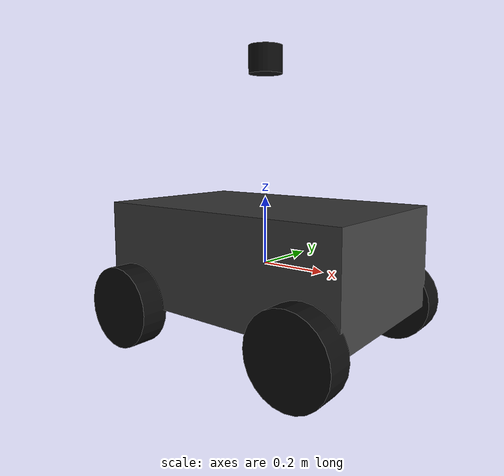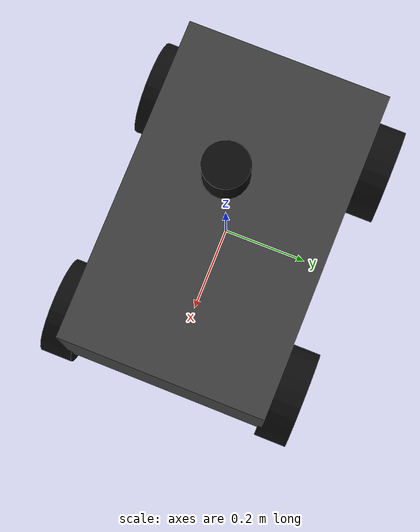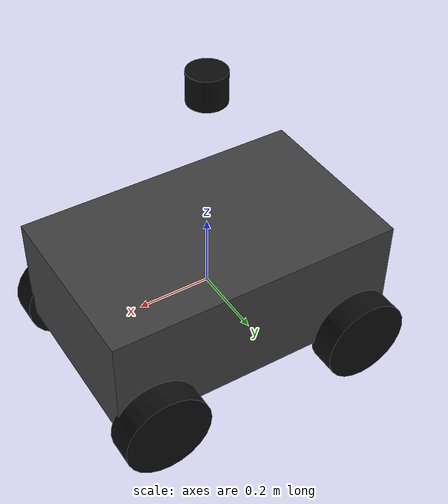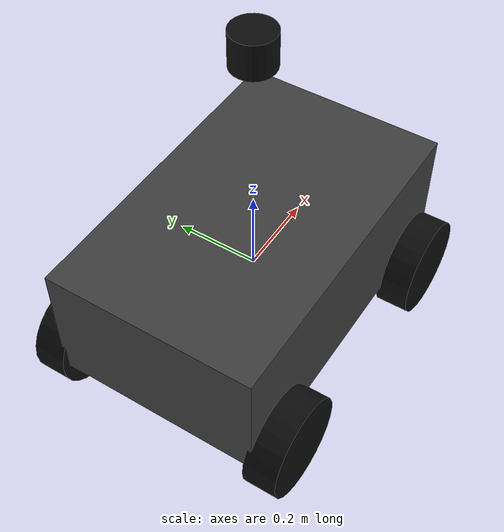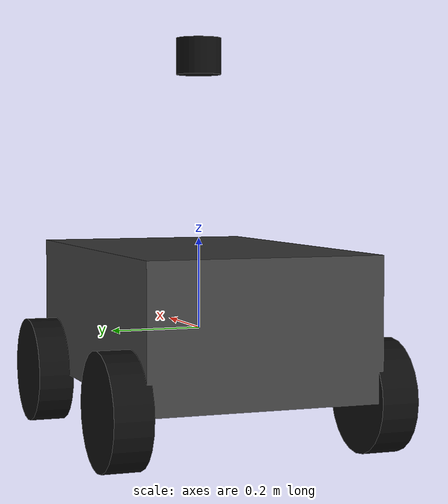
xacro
<?xml version="1.0"?>

<robot name="all_weather_explorer"
       xmlns:xacro="http://ros.org/wiki/xacro">

  <!-- Include all robot components -->
  <xacro:include filename="$(find rover)/urdf/materials.xacro"/>
  <xacro:include filename="$(find rover)/urdf/base.xacro"/>
  <xacro:include filename="$(find rover)/urdf/wheels.xacro"/>
  <xacro:include filename="$(find rover)/urdf/sensors.xacro"/>
  <xacro:include filename="$(find rover)/urdf/gazebo.xacro"/>
  <xacro:include filename="$(find rover)/urdf/ros2_control.xacro"/>

  <!-- Instantiate the robot -->
  <xacro:rover_base/>
  <xacro:rover_wheels/>
  <xacro:rover_sensors/>
  <xacro:rover_gazebo/>
  <xacro:rover_ros2_control/>

</robot>

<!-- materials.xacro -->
<robot xmlns:xacro="http://www.ros.org/wiki/xacro">

  <material name="black">
    <color rgba="0.05 0.05 0.05 1"/>
  </material>

  <material name="dark_grey">
    <color rgba="0.25 0.25 0.25 1"/>
  </material>

  <material name="grey">
    <color rgba="0.6 0.6 0.6 1"/>
  </material>

  <material name="white">
    <color rgba="1.0 1.0 1.0 1"/>
  </material>

  <material name="blue">
    <color rgba="0.1 0.3 0.8 1"/>
  </material>

  <material name="red">
    <color rgba="0.8 0.1 0.1 1"/>
  </material>

</robot>

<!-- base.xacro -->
<robot xmlns:xacro="http://ros.org/wiki/xacro">

  <xacro:macro name="rover_base">

    <link name="base_link">

      <visual>
        <origin xyz="0 0 0.03" rpy="0 0 0"/>
        <geometry>
          <box size="0.8 0.5 0.3"/>
        </geometry>
        <material name="dark_grey"/>
      </visual>

      <collision>
        <origin xyz="0 0 0.03" rpy="0 0 0"/>
        <geometry>
          <box size="0.8 0.5 0.3"/>
        </geometry>
      </collision>

      <inertial>
        <origin xyz="0 0 0"/>
        <mass value="25.0"/>

        <inertia
          ixx="0.90"
          ixy="0.0"
          ixz="0.0"
          iyy="1.90"
          iyz="0.0"
          izz="2.40"/>
      </inertial>

    </link>

    <gazebo reference="base_link">
      <material>Gazebo/DarkGrey</material>

      <self_collide>false</self_collide>
      <gravity>true</gravity>

      <mu1>1.5</mu1>
      <mu2>1.5</mu2>

      <kp>1000000</kp>
      <kd>100</kd>
    </gazebo>

  </xacro:macro>

</robot>

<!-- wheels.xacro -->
<robot xmlns:xacro="http://www.ros.org/wiki/xacro">

  <!-- Wheel dimensions -->

  <xacro:property name="wheel_radius" value="0.12"/>
  <xacro:property name="wheel_width" value="0.08"/>

  <!-- Vehicle dimensions -->
  <xacro:property name="wheelbase" value="0.60"/>
  <xacro:property name="track_width" value="0.56"/>

  <!-- Wheel / steering masses -->
  <xacro:property name="wheel_mass" value="2.0"/>
  <xacro:property name="steering_mass" value="1.0"/>

  <!-- Wheel inertia -->

  <xacro:macro name="wheel_inertia">

    <inertial>

      <mass value="${wheel_mass}"/>

      <origin xyz="0 0 0" rpy="0 0 0"/>

      <!-- Cylindrical wheel -->
      <inertia
        ixx="${wheel_mass * (3*wheel_radius*wheel_radius + wheel_width*wheel_width) / 12}"
        iyy="${wheel_mass * (3*wheel_radius*wheel_radius + wheel_width*wheel_width) / 12}"
        izz="${wheel_mass * wheel_radius*wheel_radius / 2}"
        ixy="0"
        ixz="0"
        iyz="0"/>

    </inertial>

  </xacro:macro>

  <!-- Steering knuckle inertia -->

  <xacro:macro name="steering_inertia">

    <inertial>

      <mass value="${steering_mass}"/>

      <origin xyz="0 0 0" rpy="0 0 0"/>

      <inertia
        ixx="0.005"
        iyy="0.005"
        izz="0.005"
        ixy="0"
        ixz="0"
        iyz="0"/>

    </inertial>

  </xacro:macro>

  <!-- Main wheel macro -->

  <xacro:macro name="rover_wheels">

    <!-- FRONT LEFT STEERING LINK -->

    <link name="front_left_steering_link">

      <xacro:steering_inertia/>

      <visual>

        <origin
          xyz="0 0 0"
          rpy="0 0 0"/>

        <geometry>

          <cylinder
            radius="0.04"
            length="0.08"/>

        </geometry>

        <material name="black"/>

      </visual>

      <collision>

        <origin
          xyz="0 0 0"
          rpy="0 0 0"/>

        <geometry>

          <cylinder
            radius="0.04"
            length="0.08"/>

        </geometry>

      </collision>

    </link>

    <!-- FRONT LEFT STEERING JOINT -->

    <joint
      name="front_left_steering_joint"
      type="revolute">

      <parent link="base_link"/>
      <child link="front_left_steering_link"/>

      <origin
        xyz="${wheelbase/2} ${track_width/2} ${-wheel_radius}"
        rpy="0 0 0"/>

      <axis xyz="0 0 1"/>

      <limit
        lower="-0.6"
        upper="0.6"
        effort="100"
        velocity="2.0"/>

    </joint>

    <!-- FRONT LEFT WHEEL -->

    <link name="front_left_wheel_link">

      <xacro:wheel_inertia/>

      <visual>

        <!-- Wheel axle along Y -->
        <origin
          xyz="0 0 0"
          rpy="1.57079632679 0 0"/>

        <geometry>

          <cylinder
            radius="${wheel_radius}"
            length="${wheel_width}"/>

        </geometry>

        <material name="black"/>

      </visual>

      <collision>

        <origin
          xyz="0 0 0"
          rpy="1.57079632679 0 0"/>

        <geometry>

          <cylinder
            radius="${wheel_radius}"
            length="${wheel_width}"/>

        </geometry>

      </collision>

    </link>

    <!-- FRONT LEFT WHEEL JOINT -->

    <joint
      name="front_left_wheel_joint"
      type="continuous">

      <parent link="front_left_steering_link"/>
      <child link="front_left_wheel_link"/>

      <origin
        xyz="0 0 0"
        rpy="0 0 0"/>

      <axis xyz="0 1 0"/>

    </joint>

    <!-- FRONT RIGHT STEERING LINK -->

    <link name="front_right_steering_link">

      <xacro:steering_inertia/>

      <visual>

        <origin
          xyz="0 0 0"
          rpy="0 0 0"/>

        <geometry>

          <cylinder
            radius="0.04"
            length="0.08"/>

        </geometry>

        <material name="black"/>

      </visual>

      <collision>

        <origin
          xyz="0 0 0"
          rpy="0 0 0"/>

        <geometry>

          <cylinder
            radius="0.04"
            length="0.08"/>

        </geometry>

      </collision>

    </link>

    <!-- FRONT RIGHT STEERING JOINT -->

    <joint
      name="front_right_steering_joint"
      type="revolute">

      <parent link="base_link"/>
      <child link="front_right_steering_link"/>

      <origin
        xyz="${wheelbase/2} ${-track_width/2} ${-wheel_radius}"
        rpy="0 0 0"/>

      <axis xyz="0 0 1"/>

      <limit
        lower="-0.6"
        upper="0.6"
        effort="100"
        velocity="2.0"/>

    </joint>

    <!-- FRONT RIGHT WHEEL -->

    <link name="front_right_wheel_link">

      <xacro:wheel_inertia/>

      <visual>

        <origin
          xyz="0 0 0"
          rpy="1.57079632679 0 0"/>

        <geometry>

          <cylinder
            radius="${wheel_radius}"
            length="${wheel_width}"/>

        </geometry>

        <material name="black"/>

      </visual>

      <collision>

        <origin
          xyz="0 0 0"
          rpy="1.57079632679 0 0"/>

        <geometry>

          <cylinder
            radius="${wheel_radius}"
            length="${wheel_width}"/>

        </geometry>

      </collision>

    </link>

    <!-- FRONT RIGHT WHEEL JOINT -->

    <joint
      name="front_right_wheel_joint"
      type="continuous">

      <parent link="front_right_steering_link"/>
      <child link="front_right_wheel_link"/>

      <origin
        xyz="0 0 0"
        rpy="0 0 0"/>

      <axis xyz="0 1 0"/>

    </joint>

    <!-- REAR LEFT WHEEL -->

    <link name="rear_left_wheel_link">

      <xacro:wheel_inertia/>

      <visual>

        <origin
          xyz="0 0 0"
          rpy="1.57079632679 0 0"/>

        <geometry>

          <cylinder
            radius="${wheel_radius}"
            length="${wheel_width}"/>

        </geometry>

        <material name="black"/>

      </visual>

      <collision>

        <origin
          xyz="0 0 0"
          rpy="1.57079632679 0 0"/>

        <geometry>

          <cylinder
            radius="${wheel_radius}"
            length="${wheel_width}"/>

        </geometry>

      </collision>

    </link>

    <!-- REAR LEFT WHEEL JOINT -->

    <joint
      name="rear_left_wheel_joint"
      type="continuous">

      <parent link="base_link"/>
      <child link="rear_left_wheel_link"/>

      <origin
        xyz="${-wheelbase/2} ${track_width/2} ${-wheel_radius}"
        rpy="0 0 0"/>

      <axis xyz="0 1 0"/>

    </joint>

    <!-- REAR RIGHT WHEEL -->

    <link name="rear_right_wheel_link">

      <xacro:wheel_inertia/>

      <visual>

        <origin
          xyz="0 0 0"
          rpy="1.57079632679 0 0"/>

        <geometry>

          <cylinder
            radius="${wheel_radius}"
            length="${wheel_width}"/>

        </geometry>

        <material name="black"/>

      </visual>

      <collision>

        <origin
          xyz="0 0 0"
          rpy="1.57079632679 0 0"/>

        <geometry>

          <cylinder
            radius="${wheel_radius}"
            length="${wheel_width}"/>

        </geometry>

      </collision>

    </link>

    <!-- REAR RIGHT WHEEL JOINT -->

    <joint
      name="rear_right_wheel_joint"
      type="continuous">

      <parent link="base_link"/>
      <child link="rear_right_wheel_link"/>

      <origin
        xyz="${-wheelbase/2} ${-track_width/2} ${-wheel_radius}"
        rpy="0 0 0"/>

      <axis xyz="0 1 0"/>

    </joint>

  </xacro:macro>

</robot>

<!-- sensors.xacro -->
<robot xmlns:xacro="http://ros.org/wiki/xacro">

  <xacro:macro name="rover_sensors">

    <!-- IMU -->
    <link name="imu_link">
      <visual>
        <geometry>
          <box size="0.04 0.04 0.02"/>
        </geometry>
        <material name="grey"/>
      </visual>

      <collision>
        <geometry>
          <box size="0.04 0.04 0.02"/>
        </geometry>
      </collision>

      <inertial>
        <mass value="0.05"/>
        <origin xyz="0 0 0"/>
        <inertia
          ixx="1e-5"
          iyy="1e-5"
          izz="1e-5"
          ixy="0"
          ixz="0"
          iyz="0"/>
      </inertial>
    </link>

    <joint name="imu_joint" type="fixed">
      <parent link="base_link"/>
      <child link="imu_link"/>
      <origin xyz="0 0 0"/>
    </joint>

    <!-- LiDAR -->
    <link name="lidar_top_link">
      <visual>
        <geometry>
          <cylinder radius="0.05" length="0.08"/>
        </geometry>
        <material name="black"/>
      </visual>

      <collision>
        <geometry>
          <cylinder radius="0.05" length="0.08"/>
        </geometry>
      </collision>

      <inertial>
        <mass value="0.3"/>
        <origin xyz="0 0 0"/>
        <inertia
          ixx="0.0005"
          iyy="0.0005"
          izz="0.0005"
          ixy="0"
          ixz="0"
          iyz="0"/>
      </inertial>
    </link>

    <joint name="lidar_joint" type="fixed">
      <parent link="base_link"/>
      <child link="lidar_top_link"/>
      <origin xyz="0 0 0.60"/>
    </joint>

    <!-- GPS -->
    <link name="gps_link"/>

    <joint name="gps_joint" type="fixed">
      <parent link="base_link"/>
      <child link="gps_link"/>
      <origin xyz="-0.30 0 0.80"/>
    </joint>

    <!-- Radar -->
    <link name="radar_front_link"/>

    <joint name="radar_joint" type="fixed">
      <parent link="base_link"/>
      <child link="radar_front_link"/>
      <origin xyz="0.40 0 0.15"/>
    </joint>

    <!-- Thermal Camera -->
    <link name="camera_thermal_link"/>

    <joint name="camera_thermal_joint" type="fixed">
      <parent link="base_link"/>
      <child link="camera_thermal_link"/>
      <origin xyz="0.10 0 0.50"/>
    </joint>

  </xacro:macro>

</robot>
